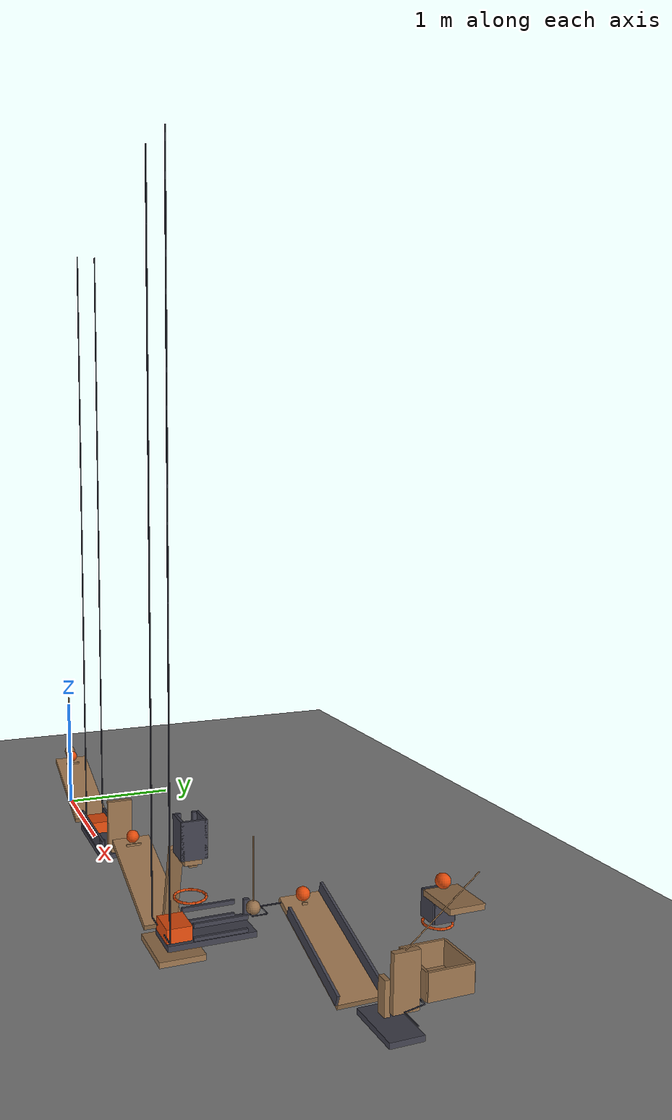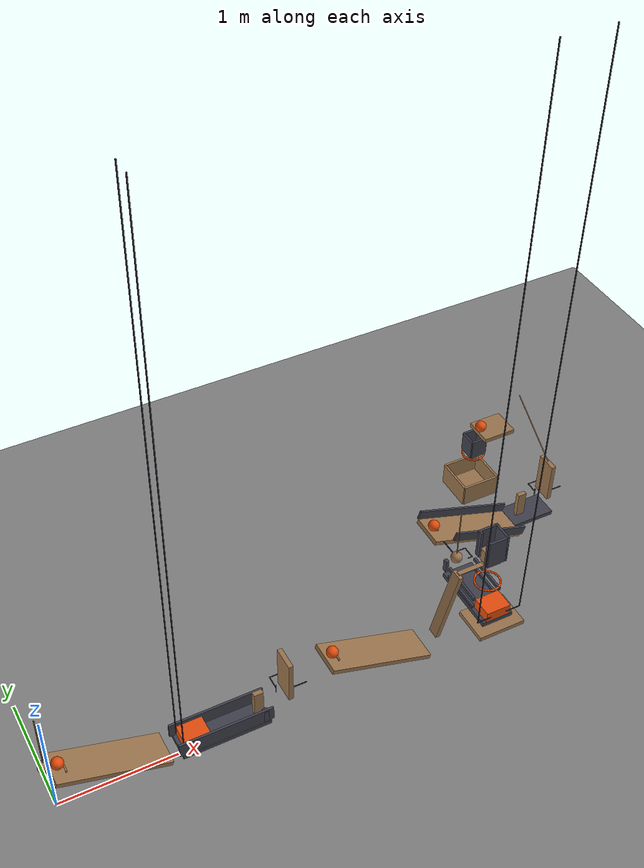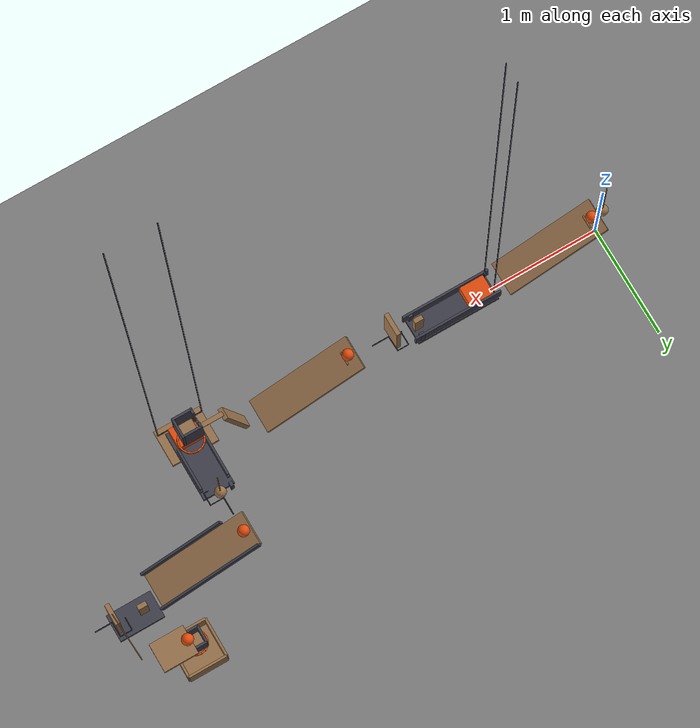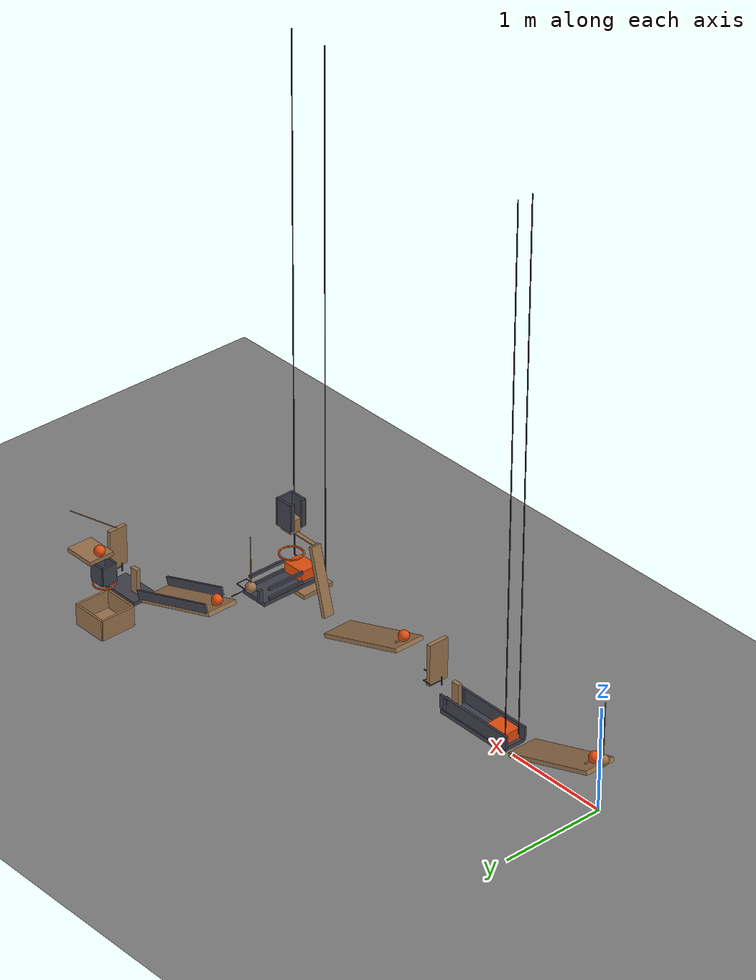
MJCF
<mujoco model="cascade_with_nonpinching_flap_catches">
  <compiler angle="radian"/>
  <option timestep="0.002"/>
  <worldbody>
    <geom name="floor" type="plane" size="12 12 0.1" friction="0.68 0.005 0.002"/>
    <body name="pendulum1" pos="-0.0299343 0 1.06529">
      <joint name="pendulum1_hinge" type="hinge" pos="0 0 0" axis="0 1 0" limited="true" range="-1.309 0.959931" damping="0.04"/>
      <geom name="pendulum1" type="sphere" pos="0 0 -0.55" size="0.05" mass="0.36" friction="0.68 0.005 0.0001" solref="0.01 1" rgba="0.6 0.45 0.3 1"/>
      <geom name="pendulum1 rod" type="capsule" size="0.005" fromto="0 0 0 3.46945e-18 0 -0.5" mass="0.04" friction="0.68 0.005 0.0001" solref="0.01 1" rgba="0.6 0.45 0.3 1"/>
    </body>
    <body name="ramp1">
      <geom name="ramp1" type="box" pos="0.449121 0 0.285735" size="0.475 0.15 0.02" euler="0 0.331613 0" friction="0.68 0.005 0.0001" solref="0.01 1" rgba="0.6 0.45 0.3 1"/>
    </body>
    <body name="ramp1 holding lip">
      <geom name="ramp1 holding lip" type="box" pos="0.113 0 0.4306" size="0.006 0.06 0.008" friction="0.68 0.005 0.0001" solref="0.01 1" rgba="0.6 0.45 0.3 1"/>
    </body>
    <body name="ball1" pos="0.0700657 0 0.490287">
      <freejoint/>
      <geom name="ball1" type="sphere" pos="0 0 0" size="0.05" mass="0.2" condim="6" friction="0.68 0.005 0.002" solref="0.01 1" rgba="0.9 0.3 0.05 1"/>
    </body>
    <body name="cart1 track">
      <geom name="cart1 track" type="box" pos="1.36975 0 0.1" size="0.375 0.12 0.02" friction="0.68 0.005 0.0001" solref="0.01 1" rgba="0.25 0.25 0.3 1"/>
    </body>
    <body name="cart1 left guide">
      <geom name="cart1 left guide" type="box" pos="1.36975 0.102 0.185" size="0.4 0.01 0.065" friction="0.68 0.005 0.0001" solref="0.01 1" rgba="0.25 0.25 0.3 1"/>
    </body>
    <body name="cart1 right guide">
      <geom name="cart1 right guide" type="box" pos="1.36975 -0.102 0.185" size="0.4 0.01 0.065" friction="0.68 0.005 0.0001" solref="0.01 1" rgba="0.25 0.25 0.3 1"/>
    </body>
    <body name="cart1" pos="1.13475 0 0.17">
      <freejoint/>
      <geom name="cart1" type="box" pos="0 0 0" size="0.11 0.09 0.05" mass="0.5" friction="0.68 0.005 0.0001" solref="0.01 1" rgba="0.9 0.3 0.05 1"/>
    </body>
    <body name="cart1 assist" pos="1.01975 0 5.17">
      <joint name="cart1_assist_hinge" type="hinge" pos="0 0 0" axis="0 1 0" limited="true" range="-0.139626 0" stiffness="0.1" springref="-166" damping="0.04"/>
      <geom name="cart1 assist" type="capsule" size="0.005" fromto="0 -0.075 0 0 -0.075 -5" mass="0.005" friction="0.68 0.005 0.0001" solref="0.01 1" rgba="0.2 0.2 0.25 1"/>
      <geom name="cart1 assist left arm" type="capsule" size="0.005" fromto="0 0.075 0 0 0.075 -5" mass="0.005" friction="0.68 0.005 0.0001" solref="0.01 1" rgba="0.2 0.2 0.25 1"/>
    </body>
    <body name="cart1 left stop">
      <geom name="cart1 left stop" type="box" pos="1.70475 0.095 0.18" size="0.02 0.02 0.06" friction="0.68 0.005 0.0001" solref="0.01 1" rgba="0.25 0.25 0.3 1"/>
    </body>
    <body name="cart1 right stop">
      <geom name="cart1 right stop" type="box" pos="1.70475 -0.095 0.18" size="0.02 0.02 0.06" friction="0.68 0.005 0.0001" solref="0.01 1" rgba="0.25 0.25 0.3 1"/>
    </body>
    <body name="domino1" pos="1.68475 0 0.24">
      <freejoint/>
      <geom name="domino1" type="box" pos="0 0 0" size="0.04 0.02 0.12" mass="0.25" friction="0.68 0.005 0.0001" solref="0.01 1" rgba="0.6 0.45 0.3 1"/>
    </body>
    <body name="flap1" pos="1.92475 0 0.65">
      <joint name="flap1_hinge" type="hinge" pos="0 0 0" axis="0 1 0" limited="true" range="-1.13446 0" stiffness="0.5" springref="-1.13446" damping="0.04"/>
      <geom name="flap1" type="box" pos="0 0 -0.2" size="0.2 0.1 0.02" euler="0 -1.5708 0" mass="0.3" friction="0.68 0.005 0.0001" solref="0.01 1" rgba="0.6 0.45 0.3 1"/>
    </body>
    <body name="flap1 catch" pos="2.09975 -0.015 0.27">
      <joint name="flap1_catch_hinge" type="hinge" pos="0 0 0" axis="0 0 1" limited="true" range="-1.74533 0" stiffness="0.03" springref="-4.5" damping="0.04"/>
      <geom name="flap1 catch" type="capsule" size="0.005" fromto="-0.15 0 0 0 0 0" mass="0.004" friction="0.68 0.005 0.0001" solref="0.01 1" rgba="0.2 0.2 0.25 1"/>
      <geom name="flap1 catch crosspiece" type="capsule" size="0.004" fromto="-0.15 0 0 -0.15 0.145 0.035" mass="0.002" friction="0.68 0.005 0.0001" solref="0.01 1" rgba="0.2 0.2 0.25 1"/>
      <geom name="flap1 catch return" type="capsule" size="0.004" fromto="-0.15 0.145 0.035 -0.25 0.145 0.035" mass="0.002" friction="0.68 0.005 0.0001" solref="0.01 1" rgba="0.2 0.2 0.25 1"/>
      <geom name="flap1 release ear" type="capsule" size="0.004" fromto="-0.25 0.145 0.035 -0.25 0.03 0.035" mass="0.002" friction="0.68 0.005 0.0001" solref="0.01 1" rgba="0.2 0.2 0.25 1"/>
      <geom name="flap1 release finger" type="capsule" size="0.004" fromto="-0.25 0.03 -0.015 -0.25 0.03 0.065" mass="0.001" friction="0.68 0.005 0.0001" solref="0.01 1" rgba="0.2 0.2 0.25 1"/>
    </body>
    <body name="ramp2">
      <geom name="ramp2" type="box" pos="2.71512 0 0.285735" size="0.475 0.15 0.02" euler="0 0.331613 0" friction="0.68 0.005 0.0001" solref="0.01 1" rgba="0.6 0.45 0.3 1"/>
    </body>
    <body name="ramp2 holding lip">
      <geom name="ramp2 holding lip" type="box" pos="2.369 0 0.434043" size="0.006 0.06 0.008" friction="0.68 0.005 0.0001" solref="0.01 1" rgba="0.6 0.45 0.3 1"/>
    </body>
    <body name="ball2" pos="2.33607 0 0.490287">
      <freejoint/>
      <geom name="ball2" type="sphere" pos="0 0 0" size="0.05" mass="0.2" condim="6" friction="0.68 0.005 0.002" solref="0.01 1" rgba="0.9 0.3 0.05 1"/>
    </body>
    <body name="seesaw1" pos="3.37419 0 0.513926">
      <joint name="seesaw1_hinge" type="hinge" pos="0 0 0" axis="0 1 0" limited="true" range="-0.698132 0" stiffness="0.1" springref="-13" damping="0.04"/>
      <geom name="seesaw1" type="box" pos="-5e-08 0 0" size="0.325 0.05 0.02" euler="0 -1.309 0" mass="0.55" friction="0.68 0.005 0.0001" solref="0.01 1" rgba="0.6 0.45 0.3 1"/>
      <geom name="seesaw1 cradle bridge" type="box" pos="0.234116 0 0.321074" size="0.15 0.02 0.005" mass="0.003" friction="0.68 0.005 0.0001" solref="0.01 1" rgba="0.6 0.45 0.3 1"/>
      <geom name="seesaw1 cradle" type="box" pos="0.384116 0 0.321074" size="0.07 0.03 0.005" mass="0.003" friction="0.68 0.005 0.0001" solref="0.01 1" rgba="0.6 0.45 0.3 1"/>
    </body>
    <body name="block1" pos="3.7583 0 0.9">
      <freejoint/>
      <geom name="block1" type="box" pos="0 0 0" size="0.06 0.06 0.06" mass="0.35" friction="0.68 0.005 0.0001" solref="0.01 1" rgba="0.6 0.45 0.3 1"/>
    </body>
    <body name="block1 near left guide">
      <geom name="block1 near left guide" type="box" pos="3.6783 0.06 1.0175" size="0.01 0.02 0.1325" friction="0.68 0.005 0.0001" solref="0.01 1" rgba="0.25 0.25 0.3 1"/>
    </body>
    <body name="block1 near right guide">
      <geom name="block1 near right guide" type="box" pos="3.6783 -0.06 1.0175" size="0.01 0.02 0.1325" friction="0.68 0.005 0.0001" solref="0.01 1" rgba="0.25 0.25 0.3 1"/>
    </body>
    <body name="block1 far guide">
      <geom name="block1 far guide" type="box" pos="3.8383 0 1.0175" size="0.01 0.09 0.1325" friction="0.68 0.005 0.0001" solref="0.01 1" rgba="0.25 0.25 0.3 1"/>
    </body>
    <body name="block1 left guide">
      <geom name="block1 left guide" type="box" pos="3.7583 0.08 1.0175" size="0.09 0.01 0.1325" friction="0.68 0.005 0.0001" solref="0.01 1" rgba="0.25 0.25 0.3 1"/>
    </body>
    <body name="block1 right guide">
      <geom name="block1 right guide" type="box" pos="3.7583 -0.08 1.0175" size="0.09 0.01 0.1325" friction="0.68 0.005 0.0001" solref="0.01 1" rgba="0.25 0.25 0.3 1"/>
    </body>
    <body name="ring1">
      <geom name="ring1_00" type="capsule" size="0.008" fromto="3.8663 0 0.6 3.85808 0.0413298 0.6" friction="0.68 0.005 0.0001" solref="0.01 1" rgba="0.9 0.3 0.05 1"/>
      <geom name="ring1_01" type="capsule" size="0.008" fromto="3.85808 0.0413298 0.6 3.83467 0.0763675 0.6" friction="0.68 0.005 0.0001" solref="0.01 1" rgba="0.9 0.3 0.05 1"/>
      <geom name="ring1_02" type="capsule" size="0.008" fromto="3.83467 0.0763675 0.6 3.79963 0.099779 0.6" friction="0.68 0.005 0.0001" solref="0.01 1" rgba="0.9 0.3 0.05 1"/>
      <geom name="ring1_03" type="capsule" size="0.008" fromto="3.79963 0.099779 0.6 3.7583 0.108 0.6" friction="0.68 0.005 0.0001" solref="0.01 1" rgba="0.9 0.3 0.05 1"/>
      <geom name="ring1_04" type="capsule" size="0.008" fromto="3.7583 0.108 0.6 3.71697 0.099779 0.6" friction="0.68 0.005 0.0001" solref="0.01 1" rgba="0.9 0.3 0.05 1"/>
      <geom name="ring1_05" type="capsule" size="0.008" fromto="3.71697 0.099779 0.6 3.68194 0.0763675 0.6" friction="0.68 0.005 0.0001" solref="0.01 1" rgba="0.9 0.3 0.05 1"/>
      <geom name="ring1_06" type="capsule" size="0.008" fromto="3.68194 0.0763675 0.6 3.65853 0.0413298 0.6" friction="0.68 0.005 0.0001" solref="0.01 1" rgba="0.9 0.3 0.05 1"/>
      <geom name="ring1_07" type="capsule" size="0.008" fromto="3.65853 0.0413298 0.6 3.6503 1.32262e-17 0.6" friction="0.68 0.005 0.0001" solref="0.01 1" rgba="0.9 0.3 0.05 1"/>
      <geom name="ring1_08" type="capsule" size="0.008" fromto="3.6503 1.32262e-17 0.6 3.65853 -0.0413298 0.6" friction="0.68 0.005 0.0001" solref="0.01 1" rgba="0.9 0.3 0.05 1"/>
      <geom name="ring1_09" type="capsule" size="0.008" fromto="3.65853 -0.0413298 0.6 3.68194 -0.0763675 0.6" friction="0.68 0.005 0.0001" solref="0.01 1" rgba="0.9 0.3 0.05 1"/>
      <geom name="ring1_10" type="capsule" size="0.008" fromto="3.68194 -0.0763675 0.6 3.71697 -0.099779 0.6" friction="0.68 0.005 0.0001" solref="0.01 1" rgba="0.9 0.3 0.05 1"/>
      <geom name="ring1_11" type="capsule" size="0.008" fromto="3.71697 -0.099779 0.6 3.7583 -0.108 0.6" friction="0.68 0.005 0.0001" solref="0.01 1" rgba="0.9 0.3 0.05 1"/>
      <geom name="ring1_12" type="capsule" size="0.008" fromto="3.7583 -0.108 0.6 3.79963 -0.099779 0.6" friction="0.68 0.005 0.0001" solref="0.01 1" rgba="0.9 0.3 0.05 1"/>
      <geom name="ring1_13" type="capsule" size="0.008" fromto="3.79963 -0.099779 0.6 3.83467 -0.0763675 0.6" friction="0.68 0.005 0.0001" solref="0.01 1" rgba="0.9 0.3 0.05 1"/>
      <geom name="ring1_14" type="capsule" size="0.008" fromto="3.83467 -0.0763675 0.6 3.85808 -0.0413298 0.6" friction="0.68 0.005 0.0001" solref="0.01 1" rgba="0.9 0.3 0.05 1"/>
      <geom name="ring1_15" type="capsule" size="0.008" fromto="3.85808 -0.0413298 0.6 3.8663 -2.64524e-17 0.6" friction="0.68 0.005 0.0001" solref="0.01 1" rgba="0.9 0.3 0.05 1"/>
    </body>
    <body name="door1" pos="3.7583 -0.12 0.27">
      <joint name="door1_hinge" type="hinge" pos="0 0 0" axis="1 0 0" limited="true" range="-1.22173 0" damping="0.04"/>
      <geom name="door1" type="box" pos="0 0 0" size="0.21 0.16 0.02" mass="0.45" friction="0.68 0.005 0.0001" solref="0.01 1" rgba="0.6 0.45 0.3 1"/>
    </body>
    <body name="cart2 track">
      <geom name="cart2 track" type="box" pos="3.7583 0.11 0.33" size="0.14 0.31 0.02" friction="0.68 0.005 0.0001" solref="0.01 1" rgba="0.25 0.25 0.3 1"/>
    </body>
    <body name="cart2 near guide">
      <geom name="cart2 near guide" type="box" pos="3.6363 0.17 0.3625" size="0.01 0.19 0.0125" friction="0.68 0.005 0.0001" solref="0.01 1" rgba="0.25 0.25 0.3 1"/>
    </body>
    <body name="cart2 far guide">
      <geom name="cart2 far guide" type="box" pos="3.8803 0.17 0.3625" size="0.01 0.19 0.0125" friction="0.68 0.005 0.0001" solref="0.01 1" rgba="0.25 0.25 0.3 1"/>
    </body>
    <body name="cart2 near upper guide">
      <geom name="cart2 near upper guide" type="box" pos="3.6363 0.17 0.455" size="0.01 0.19 0.015" friction="0.68 0.005 0.0001" solref="0.01 1" rgba="0.25 0.25 0.3 1"/>
    </body>
    <body name="cart2 far upper guide">
      <geom name="cart2 far upper guide" type="box" pos="3.8803 0.17 0.455" size="0.01 0.19 0.015" friction="0.68 0.005 0.0001" solref="0.01 1" rgba="0.25 0.25 0.3 1"/>
    </body>
    <body name="cart2" pos="3.7583 -0.11 0.4">
      <freejoint/>
      <geom name="cart2" type="box" pos="0 0 0" size="0.11 0.09 0.05" mass="0.5" friction="0.68 0.005 0.0001" solref="0.01 1" rgba="0.9 0.3 0.05 1"/>
    </body>
    <body name="cart2 assist" pos="3.7583 -0.205 5.4">
      <joint name="cart2_assist_hinge" type="hinge" pos="0 0 0" axis="1 0 0" limited="true" range="0 0.10472" stiffness="0.1" springref="160" damping="0.04"/>
      <geom name="cart2 assist" type="capsule" size="0.005" fromto="-0.2 0 0 -0.2 0 -5" mass="0.005" friction="0.68 0.005 0.0001" solref="0.01 1" rgba="0.2 0.2 0.25 1"/>
      <geom name="cart2 assist far arm" type="capsule" size="0.005" fromto="0.2 0 0 0.2 0 -5" mass="0.005" friction="0.68 0.005 0.0001" solref="0.01 1" rgba="0.2 0.2 0.25 1"/>
      <geom name="cart2 assist near crossbar" type="capsule" size="0.005" fromto="-0.2 0 -5 -0.075 0 -5" mass="0.002" friction="0.68 0.005 0.0001" solref="0.01 1" rgba="0.2 0.2 0.25 1"/>
      <geom name="cart2 assist far crossbar" type="capsule" size="0.005" fromto="0.2 0 -5 0.075 0 -5" mass="0.002" friction="0.68 0.005 0.0001" solref="0.01 1" rgba="0.2 0.2 0.25 1"/>
    </body>
    <body name="cart2 stop">
      <geom name="cart2 stop" type="box" pos="3.6533 0.44 0.41" size="0.015 0.02 0.06" friction="0.68 0.005 0.0001" solref="0.01 1" rgba="0.25 0.25 0.3 1"/>
    </body>
    <body name="pendulum2" pos="3.7583 0.45 0.95">
      <joint name="pendulum2_hinge" type="hinge" pos="0 0 0" axis="1 0 0" limited="true" range="0 0.663225" stiffness="3" springref="0.663225" damping="0.04"/>
      <geom name="pendulum2" type="sphere" pos="0 0 -0.5" size="0.05" mass="0.32" friction="0.68 0.005 0.0001" solref="0.01 1" rgba="0.6 0.45 0.3 1"/>
      <geom name="pendulum2 rod" type="capsule" size="0.005" fromto="0 0 0 0 0 -0.45" mass="0.03" friction="0.68 0.005 0.0001" solref="0.01 1" rgba="0.6 0.45 0.3 1"/>
    </body>
    <body name="pendulum2 catch" pos="3.7583 0.655 0.45">
      <joint name="pendulum2_catch_hinge" type="hinge" pos="0 0 0" axis="0 0 1" limited="true" range="0 1.74533" damping="0.04"/>
      <geom name="pendulum2 catch" type="capsule" size="0.005" fromto="0 -0.15 0 0 0 0" mass="0.004" friction="0.68 0.005 0.0001" solref="0.01 1" rgba="0.2 0.2 0.25 1"/>
      <geom name="pendulum2 catch crosspiece" type="capsule" size="0.004" fromto="0 -0.15 0 0.12 -0.15 0" mass="0.002" friction="0.68 0.005 0.0001" solref="0.01 1" rgba="0.2 0.2 0.25 1"/>
      <geom name="pendulum2 catch return" type="capsule" size="0.004" fromto="0.12 -0.15 0 0.12 -0.26 0" mass="0.002" friction="0.68 0.005 0.0001" solref="0.01 1" rgba="0.2 0.2 0.25 1"/>
      <geom name="pendulum2 release ear" type="capsule" size="0.004" fromto="0.12 -0.26 0 0.08 -0.26 0" mass="0.002" friction="0.68 0.005 0.0001" solref="0.01 1" rgba="0.2 0.2 0.25 1"/>
    </body>
    <body name="ramp3">
      <geom name="ramp3" type="box" pos="4.13736 0.821592 0.285735" size="0.475 0.15 0.02" euler="0 0.331613 0" friction="0.68 0.005 0.0001" solref="0.01 1" rgba="0.6 0.45 0.3 1"/>
    </body>
    <body name="ramp3 holding lip">
      <geom name="ramp3 holding lip" type="box" pos="3.79124 0.821592 0.434043" size="0.006 0.02 0.008" friction="0.68 0.005 0.0001" solref="0.01 1" rgba="0.6 0.45 0.3 1"/>
    </body>
    <body name="ramp3 far rail">
      <geom name="ramp3 far rail" type="box" pos="4.15689 0.981592 0.342466" size="0.475 0.01 0.04" euler="0 0.331613 0" friction="0.68 0.005 0.0001" solref="0.01 1" rgba="0.25 0.25 0.3 1"/>
    </body>
    <body name="ramp3 near rail">
      <geom name="ramp3 near rail" type="box" pos="4.24189 0.661592 0.314792" size="0.385624 0.01 0.04" euler="0 0.335522 0" friction="0.68 0.005 0.0001" solref="0.01 1" rgba="0.25 0.25 0.3 1"/>
    </body>
    <body name="ball3" pos="3.7583 0.821592 0.490287">
      <freejoint/>
      <geom name="ball3" type="sphere" pos="0 0 0" size="0.05" mass="0.2" condim="6" friction="0.68 0.005 0.002" solref="0.01 1" rgba="0.9 0.3 0.05 1"/>
    </body>
    <body name="domino2 platform">
      <geom name="domino2 platform" type="box" pos="4.81299 0.911592 0.1" size="0.2 0.12 0.02" friction="0.68 0.005 0.0001" solref="0.01 1" rgba="0.25 0.25 0.3 1"/>
    </body>
    <body name="domino2" pos="4.73299 0.911592 0.24">
      <freejoint/>
      <geom name="domino2" type="box" pos="0 0 0" size="0.04 0.02 0.12" mass="0.25" friction="0.68 0.005 0.0001" solref="0.01 1" rgba="0.6 0.45 0.3 1"/>
    </body>
    <body name="flap2" pos="4.97299 0.911592 0.65">
      <joint name="flap2_hinge" type="hinge" pos="0 0 0" axis="0 1 0" limited="true" range="-1.0472 0" stiffness="0.5" springref="-1.0472" damping="0.04"/>
      <geom name="flap2" type="box" pos="0 0 -0.19" size="0.02 0.09 0.19" mass="0.28" friction="0.68 0.005 0.0001" solref="0.01 1" rgba="0.6 0.45 0.3 1"/>
      <geom name="flap2 striker" type="capsule" size="0.004" fromto="0 0 0 -0.0191154 0.5 0.393109" mass="0.005" friction="0.68 0.005 0.0001" solref="0.01 1" rgba="0.6 0.45 0.3 1"/>
    </body>
    <body name="flap2 catch" pos="5.14799 0.896592 0.28">
      <joint name="flap2_catch_hinge" type="hinge" pos="0 0 0" axis="0 0 1" limited="true" range="-1.74533 0" stiffness="0.03" springref="-4" damping="0.04"/>
      <geom name="flap2 catch" type="capsule" size="0.005" fromto="-0.15 0 0 0 0 0" mass="0.004" friction="0.68 0.005 0.0001" solref="0.01 1" rgba="0.2 0.2 0.25 1"/>
      <geom name="flap2 catch crosspiece" type="capsule" size="0.004" fromto="-0.15 0 0 -0.15 0.135 0.025" mass="0.002" friction="0.68 0.005 0.0001" solref="0.01 1" rgba="0.2 0.2 0.25 1"/>
      <geom name="flap2 catch return" type="capsule" size="0.004" fromto="-0.15 0.135 0.025 -0.255 0.135 0.025" mass="0.002" friction="0.68 0.005 0.0001" solref="0.01 1" rgba="0.2 0.2 0.25 1"/>
      <geom name="flap2 release ear" type="capsule" size="0.004" fromto="-0.255 0.135 0.025 -0.255 0.03 0.025" mass="0.002" friction="0.68 0.005 0.0001" solref="0.01 1" rgba="0.2 0.2 0.25 1"/>
      <geom name="flap2 release finger" type="capsule" size="0.004" fromto="-0.255 0.03 -0.025 -0.255 0.03 0.055" mass="0.001" friction="0.68 0.005 0.0001" solref="0.01 1" rgba="0.2 0.2 0.25 1"/>
    </body>
    <body name="shelf1">
      <geom name="shelf1" type="box" pos="4.69799 1.41159 0.76" size="0.15 0.125 0.02" friction="0.68 0.005 0.0001" solref="0.01 1" rgba="0.6 0.45 0.3 1"/>
    </body>
    <body name="ball4" pos="4.57299 1.41159 0.83">
      <freejoint/>
      <geom name="ball4" type="sphere" pos="0 0 0" size="0.05" mass="0.2" condim="6" friction="0.68 0.005 0.002" solref="0.01 1" rgba="0.9 0.3 0.05 1"/>
    </body>
    <body name="ball4 near drop guide">
      <geom name="ball4 near drop guide" type="box" pos="4.45099 1.41159 0.65" size="0.01 0.072 0.09" friction="0.68 0.005 0.0001" solref="0.01 1" rgba="0.25 0.25 0.3 1"/>
    </body>
    <body name="ball4 far drop guide">
      <geom name="ball4 far drop guide" type="box" pos="4.59499 1.41159 0.65" size="0.01 0.072 0.09" friction="0.68 0.005 0.0001" solref="0.01 1" rgba="0.25 0.25 0.3 1"/>
    </body>
    <body name="ball4 left drop guide">
      <geom name="ball4 left drop guide" type="box" pos="4.52299 1.48359 0.65" size="0.072 0.01 0.09" friction="0.68 0.005 0.0001" solref="0.01 1" rgba="0.25 0.25 0.3 1"/>
    </body>
    <body name="ball4 right drop guide">
      <geom name="ball4 right drop guide" type="box" pos="4.52299 1.33959 0.65" size="0.072 0.01 0.09" friction="0.68 0.005 0.0001" solref="0.01 1" rgba="0.25 0.25 0.3 1"/>
    </body>
    <body name="ring2">
      <geom name="ring2_00" type="capsule" size="0.008" fromto="4.61899 1.41159 0.53 4.61169 1.44833 0.53" friction="0.68 0.005 0.0001" solref="0.01 1" rgba="0.9 0.3 0.05 1"/>
      <geom name="ring2_01" type="capsule" size="0.008" fromto="4.61169 1.44833 0.53 4.59088 1.47947 0.53" friction="0.68 0.005 0.0001" solref="0.01 1" rgba="0.9 0.3 0.05 1"/>
      <geom name="ring2_02" type="capsule" size="0.008" fromto="4.59088 1.47947 0.53 4.55973 1.50028 0.53" friction="0.68 0.005 0.0001" solref="0.01 1" rgba="0.9 0.3 0.05 1"/>
      <geom name="ring2_03" type="capsule" size="0.008" fromto="4.55973 1.50028 0.53 4.52299 1.50759 0.53" friction="0.68 0.005 0.0001" solref="0.01 1" rgba="0.9 0.3 0.05 1"/>
      <geom name="ring2_04" type="capsule" size="0.008" fromto="4.52299 1.50759 0.53 4.48626 1.50028 0.53" friction="0.68 0.005 0.0001" solref="0.01 1" rgba="0.9 0.3 0.05 1"/>
      <geom name="ring2_05" type="capsule" size="0.008" fromto="4.48626 1.50028 0.53 4.45511 1.47947 0.53" friction="0.68 0.005 0.0001" solref="0.01 1" rgba="0.9 0.3 0.05 1"/>
      <geom name="ring2_06" type="capsule" size="0.008" fromto="4.45511 1.47947 0.53 4.4343 1.44833 0.53" friction="0.68 0.005 0.0001" solref="0.01 1" rgba="0.9 0.3 0.05 1"/>
      <geom name="ring2_07" type="capsule" size="0.008" fromto="4.4343 1.44833 0.53 4.42699 1.41159 0.53" friction="0.68 0.005 0.0001" solref="0.01 1" rgba="0.9 0.3 0.05 1"/>
      <geom name="ring2_08" type="capsule" size="0.008" fromto="4.42699 1.41159 0.53 4.4343 1.37485 0.53" friction="0.68 0.005 0.0001" solref="0.01 1" rgba="0.9 0.3 0.05 1"/>
      <geom name="ring2_09" type="capsule" size="0.008" fromto="4.4343 1.37485 0.53 4.45511 1.34371 0.53" friction="0.68 0.005 0.0001" solref="0.01 1" rgba="0.9 0.3 0.05 1"/>
      <geom name="ring2_10" type="capsule" size="0.008" fromto="4.45511 1.34371 0.53 4.48626 1.3229 0.53" friction="0.68 0.005 0.0001" solref="0.01 1" rgba="0.9 0.3 0.05 1"/>
      <geom name="ring2_11" type="capsule" size="0.008" fromto="4.48626 1.3229 0.53 4.52299 1.31559 0.53" friction="0.68 0.005 0.0001" solref="0.01 1" rgba="0.9 0.3 0.05 1"/>
      <geom name="ring2_12" type="capsule" size="0.008" fromto="4.52299 1.31559 0.53 4.55973 1.3229 0.53" friction="0.68 0.005 0.0001" solref="0.01 1" rgba="0.9 0.3 0.05 1"/>
      <geom name="ring2_13" type="capsule" size="0.008" fromto="4.55973 1.3229 0.53 4.59088 1.34371 0.53" friction="0.68 0.005 0.0001" solref="0.01 1" rgba="0.9 0.3 0.05 1"/>
      <geom name="ring2_14" type="capsule" size="0.008" fromto="4.59088 1.34371 0.53 4.61169 1.37485 0.53" friction="0.68 0.005 0.0001" solref="0.01 1" rgba="0.9 0.3 0.05 1"/>
      <geom name="ring2_15" type="capsule" size="0.008" fromto="4.61169 1.37485 0.53 4.61899 1.41159 0.53" friction="0.68 0.005 0.0001" solref="0.01 1" rgba="0.9 0.3 0.05 1"/>
    </body>
    <body name="box1">
      <geom name="box1_base" type="box" pos="4.52299 1.41159 0.12" size="0.17 0.17 0.01" friction="0.68 0.005 0.002" solref="0.01 1" rgba="0.6 0.45 0.3 1"/>
      <geom name="box1_near_wall" type="box" pos="4.35299 1.41159 0.21" size="0.01 0.17 0.1" friction="0.68 0.005 0.002" solref="0.01 1" rgba="0.6 0.45 0.3 1"/>
      <geom name="box1_far_wall" type="box" pos="4.69299 1.41159 0.21" size="0.01 0.17 0.1" friction="0.68 0.005 0.002" solref="0.01 1" rgba="0.6 0.45 0.3 1"/>
      <geom name="box1_left_wall" type="box" pos="4.52299 1.58159 0.21" size="0.17 0.01 0.1" friction="0.68 0.005 0.002" solref="0.01 1" rgba="0.6 0.45 0.3 1"/>
      <geom name="box1_right_wall" type="box" pos="4.52299 1.24159 0.21" size="0.17 0.01 0.1" friction="0.68 0.005 0.002" solref="0.01 1" rgba="0.6 0.45 0.3 1"/>
    </body>
  </worldbody>
  <keyframe>
    <key name="start" qpos="0.959931 0.0700657 0 0.490287 1 0 0 0 1.13475 0 0.17 1 0 0 0 0 1.68475 0 0.24 1 0 0 0 0 0 2.33607 0 0.490287 1 0 0 0 0 3.7583 0 0.9 1 0 0 0 0 3.7583 -0.11 0.4 1 0 0 0 0 0 0 3.7583 0.821592 0.490287 1 0 0 0 4.73299 0.911592 0.24 1 0 0 0 0 0 4.57299 1.41159 0.83 1 0 0 0" qvel="0 0 0 0 0 0 0 0 0 0 0 0 0 0 0 0 0 0 0 0 0 0 0 0 0 0 0 0 0 0 0 0 0 0 0 0 0 0 0 0 0 0 0 0 0 0 0 0 0 0 0 0 0 0 0 0 0 0 0 0 0 0 0 0 0"/>
  </keyframe>
</mujoco>
